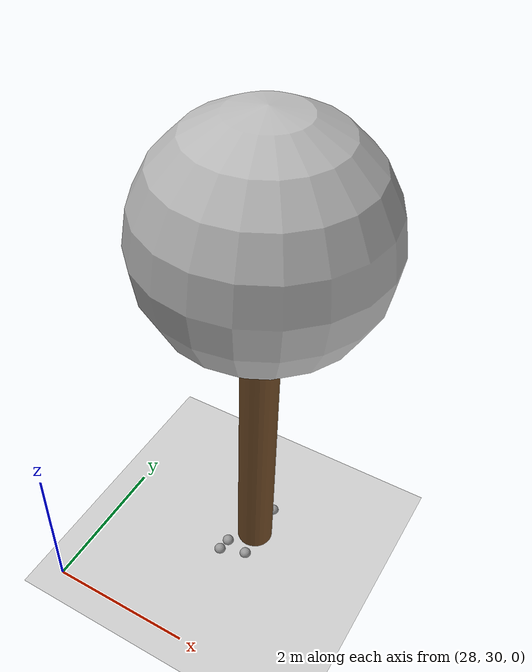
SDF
<sdf version="1.7">
 <world name="default">
  <model name="ground_plane">
   <static>1</static>
   <link name="link">
    <collision name="collision">
     <geometry><plane><normal>0 0 1</normal><size>100 100</size></plane></geometry>
     <surface>
      <contact><collide_bitmask>65535</collide_bitmask></contact>
      <friction><ode><mu>100</mu><mu2>50</mu2></ode></friction>
     </surface>
    </collision>
    <visual name="visual">
     <cast_shadows>0</cast_shadows>
     <geometry><plane><normal>0 0 1</normal><size>100 100</size></plane></geometry>
     <material>
      <script><uri>file://media/materials/scripts/gazebo.material</uri><name>Gazebo/Grey</name></script>
     </material>
    </visual>
   </link>
  </model>
  <model name="tree_simple_24">
   <static>1</static>
   <link name="link">
    <pose>0 0 0.1 0 -0 0</pose>
    <inertial>
     <mass>666</mass>
     <inertia>
      <ixx>0.0861167</ixx>
      <ixy>0</ixy>
      <ixz>0</ixz>
      <iyy>0.0861167</iyy>
      <iyz>0</iyz>
      <izz>0.0861167</izz>
     </inertia>
    </inertial>
    <collision name="collision_trunk">
     <pose>0 0 2 0 -0 0</pose>
     <geometry><cylinder><radius>0.25</radius><length>4</length></cylinder></geometry>
     <surface>
      <contact>
       <poissons_ratio>0.347</poissons_ratio>
       <elastic_modulus>8.8e+09</elastic_modulus>
       <ode><kp>100000</kp><kd>100</kd><max_vel>100</max_vel><min_depth>0.001</min_depth></ode>
      </contact>
      <friction>
       <torsional>
        <coefficient>1</coefficient>
        <use_patch_radius>0</use_patch_radius>
        <surface_radius>0.01</surface_radius>
       </torsional>
      </friction>
     </surface>
    </collision>
    <collision name="collision_treetop">
     <pose>0 0 5.2 0 -0 0</pose>
     <geometry><sphere><radius>1.5</radius></sphere></geometry>
     <surface>
      <contact>
       <poissons_ratio>0.347</poissons_ratio>
       <elastic_modulus>8.8e+09</elastic_modulus>
       <ode><kp>100000</kp><kd>100</kd><max_vel>100</max_vel><min_depth>0.001</min_depth></ode>
      </contact>
      <friction>
       <torsional>
        <coefficient>1</coefficient>
        <use_patch_radius>0</use_patch_radius>
        <surface_radius>0.01</surface_radius>
       </torsional>
      </friction>
     </surface>
    </collision>
    <visual name="trunk">
     <pose>0 0 2 0 -0 0</pose>
     <geometry><cylinder><radius>0.25</radius><length>4</length></cylinder></geometry>
     <material>
      <script>
       <uri>model://tree_simple/scripts</uri>
       <uri>model://tree_simple/materials/textures</uri>
       <name>TreeSimple/Trunk</name>
      </script>
     </material>
    </visual>
    <visual name="treetop">
     <pose>0 0 5.2 0 -0 0</pose>
     <geometry><sphere><radius>1.5</radius></sphere></geometry>
     <material>
      <script>
       <uri>model://tree_simple/scripts</uri>
       <uri>model://tree_simple/materials/textures</uri>
       <name>TreeSimple/Treetop</name>
      </script>
     </material>
    </visual>
   </link>
   <pose>30 32 -0.1 0 -0 0</pose>
  </model>
  <model name="seed_black_10">
   <link name="link">
    <inertial>
     <mass>1</mass>
     <inertia><ixx>0.1</ixx><ixy>0</ixy><ixz>0</ixz><iyy>0.1</iyy><iyz>0</iyz><izz>0.1</izz></inertia>
    </inertial>
    <visual name="visual">
     <geometry><sphere><radius>0.08</radius></sphere></geometry>
     <material>
      <script><name>Gazebo/Grey</name><uri>file://media/materials/scripts/gazebo.material</uri></script>
      <shader type="pixel"><normal_map>__default__</normal_map></shader>
      <ambient>0 0 0 1</ambient>
      <diffuse>0.7 0.7 0.7 1</diffuse>
      <specular>0.01 0.01 0.01 1</specular>
      <emissive>0 0 0 1</emissive>
     </material>
    </visual>
    <collision name="collision">
     <geometry><sphere><radius>0.0005</radius></sphere></geometry>
     <surface>
      <friction>
       <ode><mu>1</mu><mu2>1</mu2><fdir1>0 0 0</fdir1><slip1>0</slip1><slip2>0</slip2></ode>
       <torsional>
        <coefficient>1</coefficient>
        <patch_radius>0</patch_radius>
        <surface_radius>0</surface_radius>
        <use_patch_radius>1</use_patch_radius>
        <ode><slip>0</slip></ode>
       </torsional>
      </friction>
      <bounce><restitution_coefficient>0</restitution_coefficient><threshold>1e+06</threshold></bounce>
      <contact>
       <collide_without_contact>0</collide_without_contact>
       <collide_without_contact_bitmask>1</collide_without_contact_bitmask>
       <collide_bitmask>1</collide_bitmask>
       <ode>
        <soft_cfm>0</soft_cfm>
        <soft_erp>0.2</soft_erp>
        <kp>1e+13</kp>
        <kd>1</kd>
        <max_vel>0.01</max_vel>
        <min_depth>0</min_depth>
       </ode>
       <bullet>
        <split_impulse>1</split_impulse>
        <split_impulse_penetration_threshold>-0.01</split_impulse_penetration_threshold>
        <soft_cfm>0</soft_cfm>
        <soft_erp>0.2</soft_erp>
        <kp>1e+13</kp>
        <kd>1</kd>
       </bullet>
      </contact>
     </surface>
    </collision>
   </link>
   <static>0</static>
   <pose>29.8796 32.4883 0.0005 0 -0 0</pose>
  </model>
  <model name="seed_black_11">
   <link name="link">
    <inertial>
     <mass>1</mass>
     <inertia><ixx>0.1</ixx><ixy>0</ixy><ixz>0</ixz><iyy>0.1</iyy><iyz>0</iyz><izz>0.1</izz></inertia>
    </inertial>
    <visual name="visual">
     <geometry><sphere><radius>0.08</radius></sphere></geometry>
     <material>
      <script><name>Gazebo/Grey</name><uri>file://media/materials/scripts/gazebo.material</uri></script>
      <shader type="pixel"><normal_map>__default__</normal_map></shader>
      <ambient>0 0 0 1</ambient>
      <diffuse>0.7 0.7 0.7 1</diffuse>
      <specular>0.01 0.01 0.01 1</specular>
      <emissive>0 0 0 1</emissive>
     </material>
    </visual>
    <collision name="collision">
     <geometry><sphere><radius>0.0005</radius></sphere></geometry>
     <surface>
      <friction>
       <ode><mu>1</mu><mu2>1</mu2><fdir1>0 0 0</fdir1><slip1>0</slip1><slip2>0</slip2></ode>
       <torsional>
        <coefficient>1</coefficient>
        <patch_radius>0</patch_radius>
        <surface_radius>0</surface_radius>
        <use_patch_radius>1</use_patch_radius>
        <ode><slip>0</slip></ode>
       </torsional>
      </friction>
      <bounce><restitution_coefficient>0</restitution_coefficient><threshold>1e+06</threshold></bounce>
      <contact>
       <collide_without_contact>0</collide_without_contact>
       <collide_without_contact_bitmask>1</collide_without_contact_bitmask>
       <collide_bitmask>1</collide_bitmask>
       <ode>
        <soft_cfm>0</soft_cfm>
        <soft_erp>0.2</soft_erp>
        <kp>1e+13</kp>
        <kd>1</kd>
        <max_vel>0.01</max_vel>
        <min_depth>0</min_depth>
       </ode>
       <bullet>
        <split_impulse>1</split_impulse>
        <split_impulse_penetration_threshold>-0.01</split_impulse_penetration_threshold>
        <soft_cfm>0</soft_cfm>
        <soft_erp>0.2</soft_erp>
        <kp>1e+13</kp>
        <kd>1</kd>
       </bullet>
      </contact>
     </surface>
    </collision>
   </link>
   <static>0</static>
   <pose>29.7367 31.6739 0.0005 0 -0 0</pose>
  </model>
  <model name="seed_black_12">
   <link name="link">
    <inertial>
     <mass>1</mass>
     <inertia><ixx>0.1</ixx><ixy>0</ixy><ixz>0</ixz><iyy>0.1</iyy><iyz>0</iyz><izz>0.1</izz></inertia>
    </inertial>
    <visual name="visual">
     <geometry><sphere><radius>0.08</radius></sphere></geometry>
     <material>
      <script><name>Gazebo/Grey</name><uri>file://media/materials/scripts/gazebo.material</uri></script>
      <shader type="pixel"><normal_map>__default__</normal_map></shader>
      <ambient>0 0 0 1</ambient>
      <diffuse>0.7 0.7 0.7 1</diffuse>
      <specular>0.01 0.01 0.01 1</specular>
      <emissive>0 0 0 1</emissive>
     </material>
    </visual>
    <collision name="collision">
     <geometry><sphere><radius>0.0005</radius></sphere></geometry>
     <surface>
      <friction>
       <ode><mu>1</mu><mu2>1</mu2><fdir1>0 0 0</fdir1><slip1>0</slip1><slip2>0</slip2></ode>
       <torsional>
        <coefficient>1</coefficient>
        <patch_radius>0</patch_radius>
        <surface_radius>0</surface_radius>
        <use_patch_radius>1</use_patch_radius>
        <ode><slip>0</slip></ode>
       </torsional>
      </friction>
      <bounce><restitution_coefficient>0</restitution_coefficient><threshold>1e+06</threshold></bounce>
      <contact>
       <collide_without_contact>0</collide_without_contact>
       <collide_without_contact_bitmask>1</collide_without_contact_bitmask>
       <collide_bitmask>1</collide_bitmask>
       <ode>
        <soft_cfm>0</soft_cfm>
        <soft_erp>0.2</soft_erp>
        <kp>1e+13</kp>
        <kd>1</kd>
        <max_vel>0.01</max_vel>
        <min_depth>0</min_depth>
       </ode>
       <bullet>
        <split_impulse>1</split_impulse>
        <split_impulse_penetration_threshold>-0.01</split_impulse_penetration_threshold>
        <soft_cfm>0</soft_cfm>
        <soft_erp>0.2</soft_erp>
        <kp>1e+13</kp>
        <kd>1</kd>
       </bullet>
      </contact>
     </surface>
    </collision>
   </link>
   <static>0</static>
   <pose>30.0377 32.4944 0.0005 0 -0 0</pose>
  </model>
  <model name="seed_black_14">
   <link name="link">
    <inertial>
     <mass>1</mass>
     <inertia><ixx>0.1</ixx><ixy>0</ixy><ixz>0</ixz><iyy>0.1</iyy><iyz>0</iyz><izz>0.1</izz></inertia>
    </inertial>
    <visual name="visual">
     <geometry><sphere><radius>0.08</radius></sphere></geometry>
     <material>
      <script><name>Gazebo/Grey</name><uri>file://media/materials/scripts/gazebo.material</uri></script>
      <shader type="pixel"><normal_map>__default__</normal_map></shader>
      <ambient>0 0 0 1</ambient>
      <diffuse>0.7 0.7 0.7 1</diffuse>
      <specular>0.01 0.01 0.01 1</specular>
      <emissive>0 0 0 1</emissive>
     </material>
    </visual>
    <collision name="collision">
     <geometry><sphere><radius>0.0005</radius></sphere></geometry>
     <surface>
      <friction>
       <ode><mu>1</mu><mu2>1</mu2><fdir1>0 0 0</fdir1><slip1>0</slip1><slip2>0</slip2></ode>
       <torsional>
        <coefficient>1</coefficient>
        <patch_radius>0</patch_radius>
        <surface_radius>0</surface_radius>
        <use_patch_radius>1</use_patch_radius>
        <ode><slip>0</slip></ode>
       </torsional>
      </friction>
      <bounce><restitution_coefficient>0</restitution_coefficient><threshold>1e+06</threshold></bounce>
      <contact>
       <collide_without_contact>0</collide_without_contact>
       <collide_without_contact_bitmask>1</collide_without_contact_bitmask>
       <collide_bitmask>1</collide_bitmask>
       <ode>
        <soft_cfm>0</soft_cfm>
        <soft_erp>0.2</soft_erp>
        <kp>1e+13</kp>
        <kd>1</kd>
        <max_vel>0.01</max_vel>
        <min_depth>0</min_depth>
       </ode>
       <bullet>
        <split_impulse>1</split_impulse>
        <split_impulse_penetration_threshold>-0.01</split_impulse_penetration_threshold>
        <soft_cfm>0</soft_cfm>
        <soft_erp>0.2</soft_erp>
        <kp>1e+13</kp>
        <kd>1</kd>
       </bullet>
      </contact>
     </surface>
    </collision>
   </link>
   <static>0</static>
   <pose>29.7103 31.4872 0.0005 0 -0 0</pose>
  </model>
  <model name="seed_black_16">
   <link name="link">
    <inertial>
     <mass>1</mass>
     <inertia><ixx>0.1</ixx><ixy>0</ixy><ixz>0</ixz><iyy>0.1</iyy><iyz>0</iyz><izz>0.1</izz></inertia>
    </inertial>
    <visual name="visual">
     <geometry><sphere><radius>0.08</radius></sphere></geometry>
     <material>
      <script><name>Gazebo/Grey</name><uri>file://media/materials/scripts/gazebo.material</uri></script>
      <shader type="pixel"><normal_map>__default__</normal_map></shader>
      <ambient>0 0 0 1</ambient>
      <diffuse>0.7 0.7 0.7 1</diffuse>
      <specular>0.01 0.01 0.01 1</specular>
      <emissive>0 0 0 1</emissive>
     </material>
    </visual>
    <collision name="collision">
     <geometry><sphere><radius>0.0005</radius></sphere></geometry>
     <surface>
      <friction>
       <ode><mu>1</mu><mu2>1</mu2><fdir1>0 0 0</fdir1><slip1>0</slip1><slip2>0</slip2></ode>
       <torsional>
        <coefficient>1</coefficient>
        <patch_radius>0</patch_radius>
        <surface_radius>0</surface_radius>
        <use_patch_radius>1</use_patch_radius>
        <ode><slip>0</slip></ode>
       </torsional>
      </friction>
      <bounce><restitution_coefficient>0</restitution_coefficient><threshold>1e+06</threshold></bounce>
      <contact>
       <collide_without_contact>0</collide_without_contact>
       <collide_without_contact_bitmask>1</collide_without_contact_bitmask>
       <collide_bitmask>1</collide_bitmask>
       <ode>
        <soft_cfm>0</soft_cfm>
        <soft_erp>0.2</soft_erp>
        <kp>1e+13</kp>
        <kd>1</kd>
        <max_vel>0.01</max_vel>
        <min_depth>0</min_depth>
       </ode>
       <bullet>
        <split_impulse>1</split_impulse>
        <split_impulse_penetration_threshold>-0.01</split_impulse_penetration_threshold>
        <soft_cfm>0</soft_cfm>
        <soft_erp>0.2</soft_erp>
        <kp>1e+13</kp>
        <kd>1</kd>
       </bullet>
      </contact>
     </surface>
    </collision>
   </link>
   <static>0</static>
   <pose>30.0619 31.6117 0.0005 0 -0 0</pose>
  </model>
 </world>
</sdf>
